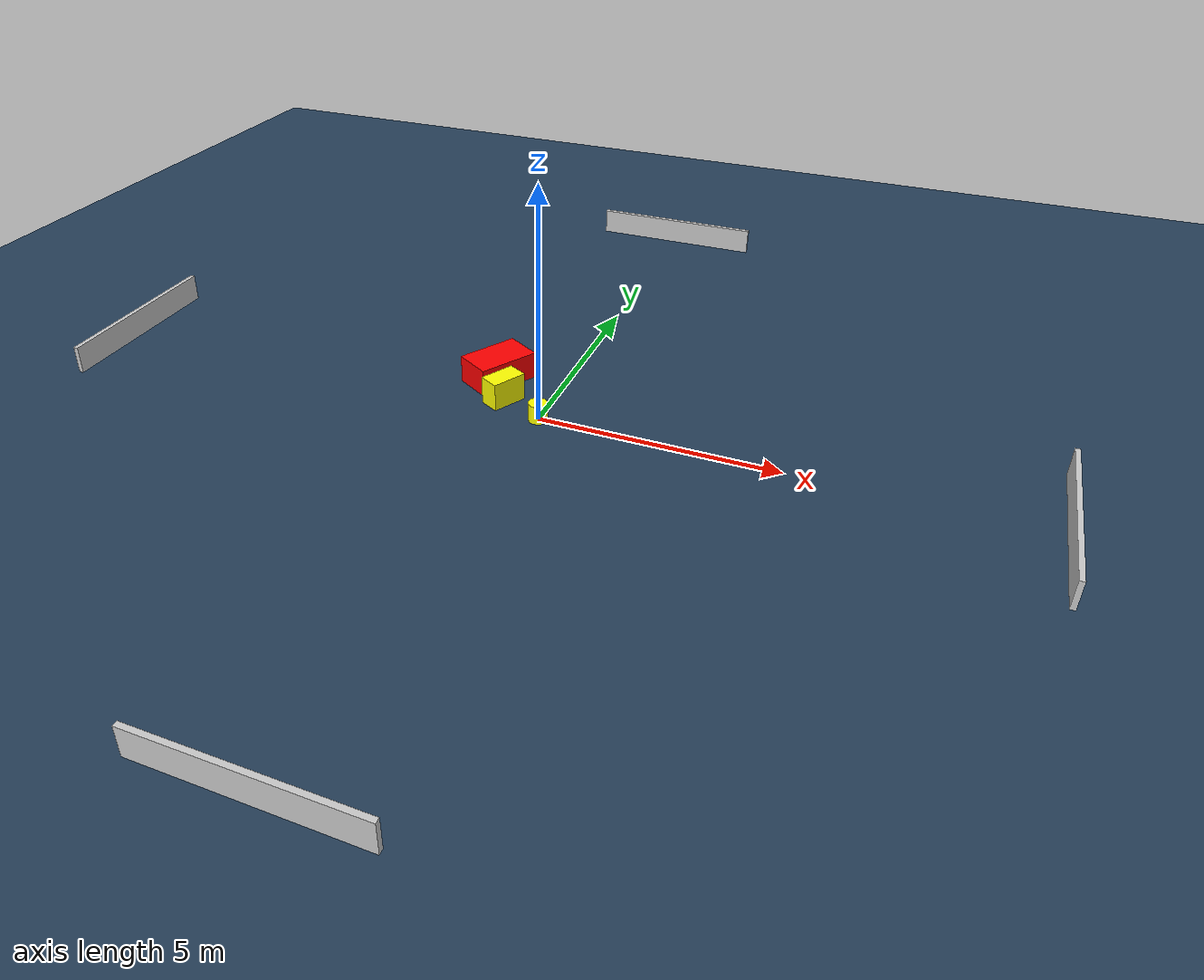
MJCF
<?xml version="1.0" ?>
<mujoco model="generated_environment">
  <option timestep="0.01" integrator="RK4" cone="elliptic"/>
  <default>
    <geom density="1"/>
  </default>
  <asset>
    <texture builtin="gradient" height="3072" name="skybox" rgb1="0.3 0.5 0.7" rgb2="0 0 0" type="skybox" width="512"/>
    <texture builtin="checker" height="300" name="groundplane" rgb1="0.2 0.3 0.4" rgb2="0.1 0.2 0.3" type="2d" width="300"/>
    <material name="groundplane" reflectance="0.2" texrepeat="5 5" texture="groundplane"/>
  </asset>
  <worldbody>
    <light dir="0 0 -1" directional="true" pos="0 0 1.5"/>
    <geom condim="3" friction="0.5 0.005 0.001" material="groundplane" name="floor" pos="0 0 0" size="0 0 0.05" type="plane"/>
    <body name="walls">
      <geom name="wall_1" condim="4" pos="-10.0 0.0 0.3" rgba="0.800000011920929 0.800000011920929 0.800000011920929 1.0" size="0.05 2.0 0.3" type="box"/>
      <geom name="wall_2" condim="4" pos="10.0 0.0 0.3" rgba="0.800000011920929 0.800000011920929 0.800000011920929 1.0" size="0.05 2.0 0.3" type="box"/>
      <geom name="wall_3" condim="4" pos="0.0 -10.0 0.3" rgba="0.800000011920929 0.800000011920929 0.800000011920929 1.0" size="2.0 0.05 0.3" type="box"/>
      <geom name="wall_4" condim="4" pos="0.0 10.0 0.3" rgba="0.800000011920929 0.800000011920929 0.800000011920929 1.0" size="2.0 0.05 0.3" type="box"/>
    </body>
    <body name="robot">
      <joint name="joint_x" type="slide" pos="0 0 0" axis="1 0 0"/>
      <joint name="joint_y" type="slide" pos="0 0 0" axis="0 1 0"/>
      <geom name="robot" type="cylinder" pos="0.0 0.0 0.2" size="0.2 0.2 0.0" mass="5.0" friction="1.0 0.005 0.0001" condim="4" rgba="1.0 1.0 0.0 1.0"/>
    </body>
    <body name="obstacle_1_movable">
      <geom name="obstacle_1_movable" condim="4" pos="-0.9539352536525884 0.4246692757915827 0.3" euler="0 0 241.60681035033588" friction="0.0 0.005 0.001" rgba="1.0 1.0 0.0 1.0" size="0.38786224306943745 0.22123227936143527 0.3" type="box" mass="0.1"/>
      <joint type="free"/>
    </body>
    <body name="obstacle_2_static">
      <geom name="obstacle_2_static" condim="4" pos="-1.4161212570495467 1.2038109954832794 0.3" euler="0 0 329.2755141580333" friction="0.0 0.005 0.001" rgba="1.0 0.0 0.0 1.0" size="0.41274483416484603 0.67747310617124 0.3" type="box"/>
    </body>
  </worldbody>
  <actuator>
    <motor name="actuator_x" joint="joint_x" gear="1" ctrlrange="-1 1"/>
    <motor name="actuator_y" joint="joint_y" gear="1" ctrlrange="-1 1"/>
  </actuator>
</mujoco>
